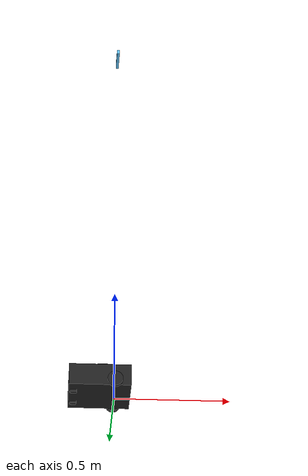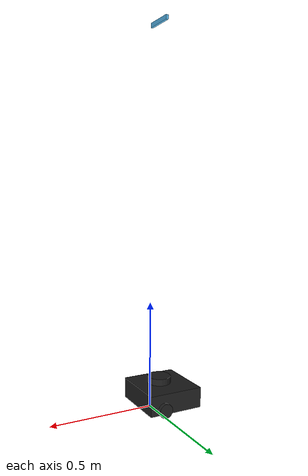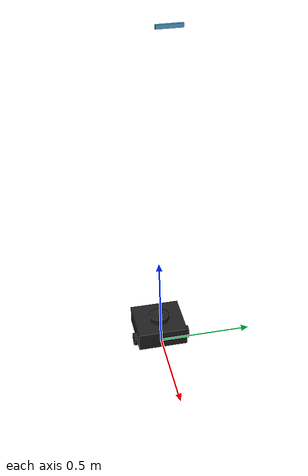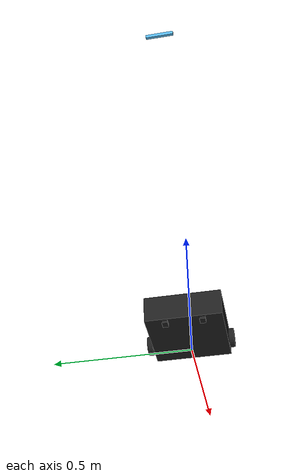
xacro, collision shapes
<?xml version="1.0" ?>
<robot name="turtlebot3_waffle" xmlns:xacro="http://ros.org/wiki/xacro">
  <xacro:include filename="$(find turtlebot3_description)/urdf/common_properties.xacro"/>
  <xacro:include filename="$(find turtlebot3_description)/urdf/turtlebot3_blind.gazebo.xacro"/>

  <xacro:property name="r200_cam_rgb_px" value="0.005"/>
  <xacro:property name="r200_cam_rgb_py" value="0.018"/>
  <xacro:property name="r200_cam_rgb_pz" value="0.013"/>
  <xacro:property name="r200_cam_depth_offset" value="0.01"/>

  <link name="base_footprint"/>

  <joint name="base_joint" type="fixed">
    <parent link="base_footprint"/>
    <child link="base_link" />
    <origin xyz="0 0 0.010" rpy="0 0 0"/>
  </joint>

  <link name="base_link">
    <visual>
      <origin xyz="-0.064 0 0.0" rpy="0 0 0"/>
      <geometry>
        <mesh filename="package://turtlebot3_description/meshes/bases/waffle_base.stl" scale="0.001 0.001 0.001"/>
      </geometry>
      <material name="light_black"/>
    </visual>

    <collision>
      <origin xyz="-0.064 0 0.047" rpy="0 0 0"/>
      <geometry>
        <box size="0.266 0.266 0.094"/>
      </geometry>
    </collision>

    <inertial>
      <origin xyz="0 0 0" rpy="0 0 0"/>
      <mass value="1.3729096e+00"/>
      <inertia ixx="8.7002718e-03" ixy="-4.7576583e-05" ixz="1.1160499e-04"
               iyy="8.6195418e-03" iyz="-3.5422299e-06"
               izz="1.4612727e-02" />
    </inertial>
  </link>

  <joint name="wheel_left_joint" type="continuous">
    <parent link="base_link"/>
    <child link="wheel_left_link"/>
    <origin xyz="0.0 0.144 0.023" rpy="-1.57 0 0"/>
    <axis xyz="0 0 1"/>
  </joint>

  <link name="wheel_left_link">
    <visual>
      <origin xyz="0 0 0" rpy="1.57 0 0"/>
      <geometry>
        <mesh filename="package://turtlebot3_description/meshes/wheels/left_tire.stl" scale="0.001 0.001 0.001"/>
      </geometry>
      <material name="dark"/>
    </visual>

    <collision>
      <origin xyz="0 0 0" rpy="0 0 0"/>
      <geometry>
        <cylinder length="0.018" radius="0.033"/>
      </geometry>
    </collision>

    <inertial>
      <origin xyz="0 0 0" />
      <mass value="2.8498940e-02" />
      <inertia ixx="1.1175580e-05" ixy="-4.2369783e-11" ixz="-5.9381719e-09"
               iyy="1.1192413e-05" iyz="-1.4400107e-11"
               izz="2.0712558e-05" />
      </inertial>
  </link>

  <joint name="wheel_right_joint" type="continuous">
    <parent link="base_link"/>
    <child link="wheel_right_link"/>
    <origin xyz="0.0 -0.144 0.023" rpy="-1.57 0 0"/>
    <axis xyz="0 0 1"/>
  </joint>

  <link name="wheel_right_link">
    <visual>
      <origin xyz="0 0 0" rpy="1.57 0 0"/>
      <geometry>
        <mesh filename="package://turtlebot3_description/meshes/wheels/right_tire.stl" scale="0.001 0.001 0.001"/>
      </geometry>
      <material name="dark"/>
    </visual>

    <collision>
      <origin xyz="0 0 0" rpy="0 0 0"/>
      <geometry>
        <cylinder length="0.018" radius="0.033"/>
      </geometry>
    </collision>

    <inertial>
      <origin xyz="0 0 0" />
      <mass value="2.8498940e-02" />
      <inertia ixx="1.1175580e-05" ixy="-4.2369783e-11" ixz="-5.9381719e-09"
               iyy="1.1192413e-05" iyz="-1.4400107e-11"
               izz="2.0712558e-05" />
      </inertial>
  </link>

  <joint name="caster_back_right_joint" type="fixed">
    <parent link="base_link"/>
    <child link="caster_back_right_link"/>
    <origin xyz="-0.177 -0.064 -0.004" rpy="-1.57 0 0"/>
  </joint>

  <link name="caster_back_right_link">
    <collision>
      <origin xyz="0 0.001 0" rpy="0 0 0"/>
      <geometry>
        <box size="0.030 0.009 0.020"/>
      </geometry>
    </collision>

    <inertial>
      <origin xyz="0 0 0" />
      <mass value="0.005" />
      <inertia ixx="0.001" ixy="0.0" ixz="0.0"
               iyy="0.001" iyz="0.0"
               izz="0.001" />
    </inertial>
  </link>

  <joint name="caster_back_left_joint" type="fixed">
    <parent link="base_link"/>
    <child link="caster_back_left_link"/>
    <origin xyz="-0.177 0.064 -0.004" rpy="-1.57 0 0"/>
  </joint>

  <link name="caster_back_left_link">
    <collision>
      <origin xyz="0 0.001 0" rpy="0 0 0"/>
      <geometry>
        <box size="0.030 0.009 0.020"/>
      </geometry>
    </collision>

    <inertial>
      <origin xyz="0 0 0" />
      <mass value="0.005" />
      <inertia ixx="0.001" ixy="0.0" ixz="0.0"
               iyy="0.001" iyz="0.0"
               izz="0.001" />
    </inertial>
  </link>

  <joint name="imu_joint" type="fixed">
    <parent link="base_link"/>
    <child link="imu_link"/>
    <origin xyz="0.0 0 0.068" rpy="0 0 0"/>
  </joint>

  <link name="imu_link"/>

  <joint name="scan_joint" type="fixed">
    <parent link="base_link"/>
    <child link="base_scan"/>
    <origin xyz="-0.064 0 0.122" rpy="0 0 0"/>
  </joint>

  <link name="base_scan">
    <visual>
      <origin xyz="0 0 0" rpy="0 0 0"/>
      <geometry>
        <mesh filename="package://turtlebot3_description/meshes/sensors/lds.stl" scale="0.001 0.001 0.001"/>
      </geometry>
      <material name="dark"/>
    </visual>

    <collision>
      <origin xyz="0.015 0 -0.0065" rpy="0 0 0"/>
      <geometry>
        <cylinder length="0.0315" radius="0.055"/>
      </geometry>
    </collision>

    <inertial>
      <mass value="0.114" />
      <origin xyz="0 0 0" />
      <inertia ixx="0.001" ixy="0.0" ixz="0.0"
               iyy="0.001" iyz="0.0"
               izz="0.001" />
    </inertial>
  </link>

<joint name="head_joint" type="fixed">
  <origin xyz="0.00 0.012 1.76" rpy="0 0 0"/>
  <parent link="base_link"/>
  <child link="head_link"/>
</joint>

<link name="head_link">
  <origin xyz="0 0 0" rpy="0 0 0"/>

  <!-- This inertial field needs doesn't contain reliable data!! -->
  <inertial>
    <mass value="0.001" />
    <origin xyz="0 0 0" />
    <inertia ixx="0.0" ixy="0.0" ixz="0.0"
             iyy="0.0" iyz="0.0"
             izz="0.0" />
  </inertial>
</link>

  <joint name="camera_joint" type="continuous">
    <origin xyz="0 0 0" rpy="0 0 0"/>
    <parent link="head_link"/>
    <child link="camera_link"/>
    <axis xyz="0 1 0"/>
  </joint>

  <link name="camera_link">
    <visual>
    <!--CAMERA ASUS-->
    <origin xyz="0 0 0" rpy="0 0 0"/>
    <geometry>
     <mesh filename="package://turtlebot3_gazebo/models/asus_xtion_pro_camera/meshes/asus_xtion_pro_camera.dae" />
    </geometry>
    <!--CAMERA REAL SENSE-->
    </visual>
    <collision>
      <origin xyz="0.003 0.065 0.007" rpy="0 0 0"/>
      <geometry>
        <box size="0.012 0.132 0.020"/>
      </geometry>
    </collision>

    <!-- This inertial field needs doesn't contain reliable data!! -->
    <inertial>
      <mass value="0.001" />
      <origin xyz="0 0 0" />
      <inertia ixx="0.003881243" ixy="0.0" ixz="0.0"
               iyy="0.000498940" iyz="0.0"
               izz="0.003879257" />
    </inertial>
  </link>

  <joint name="camera_rgb_joint" type="fixed">
    <origin xyz="${r200_cam_rgb_px} ${r200_cam_rgb_py} ${r200_cam_rgb_pz}" rpy="0 0 0"/>
    <parent link="camera_link"/>
    <child link="camera_rgb_frame"/>
  </joint>
  <link name="camera_rgb_frame"/>

  <joint name="camera_rgb_optical_joint" type="fixed">
    <origin xyz="0 0 0" rpy="-1.57 0 -1.57"/>
    <parent link="camera_rgb_frame"/>
    <child link="camera_rgb_optical_frame"/>
  </joint>
  <link name="camera_rgb_optical_frame"/>

  <joint name="camera_depth_joint" type="fixed">
    <origin xyz="${r200_cam_rgb_px} ${r200_cam_rgb_py + r200_cam_depth_offset} ${r200_cam_rgb_pz}" rpy="0 0 0"/>
    <parent link="camera_link"/>
    <child link="camera_depth_frame"/>
  </joint>
  <link name="camera_depth_frame"/>

  <joint name="camera_depth_optical_joint" type="fixed">
    <origin xyz="0 0 0" rpy="-1.57 0 -1.57"/>
    <parent link="camera_depth_frame"/>
    <child link="camera_depth_optical_frame"/>
  </joint>
  <link name="camera_depth_optical_frame"/>

  <!-- I have added a person link/joint to put a model of the human (just visually, no inertias) -->
  <link name="person_link">
    <visual>
     <origin xyz="-0.15 0 0" rpy="0 0 1.57"/>
     <geometry>
      <mesh filename="package://turtlebot3_gazebo/models/person_standing/meshes/standing.dae" />
     </geometry>
    </visual>
  </link>
  <joint name="person_joint" type="fixed">
    <origin xyz="0 0 0" rpy="0 0 0"/>
    <parent link="base_footprint"/>
    <child link="person_link"/>
  </joint>

  <transmission name="base_to_camera_trans">
    <type>transmission_interface/SimpleTransmission</type>
    <actuator name="motor1">
     <mechanicalReduction>1</mechanicalReduction>
    </actuator>
    <joint name="camera_joint">
     <hardwareInterface>hardware_interface/EffortJointInterface</hardwareInterface>
    </joint>
   </transmission>

</robot>
